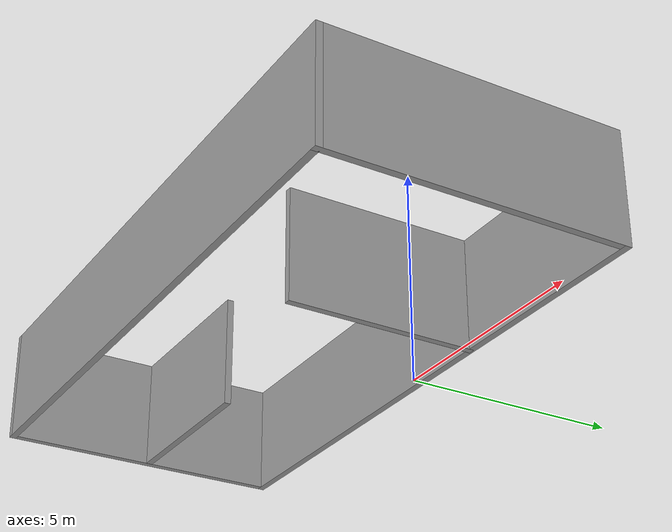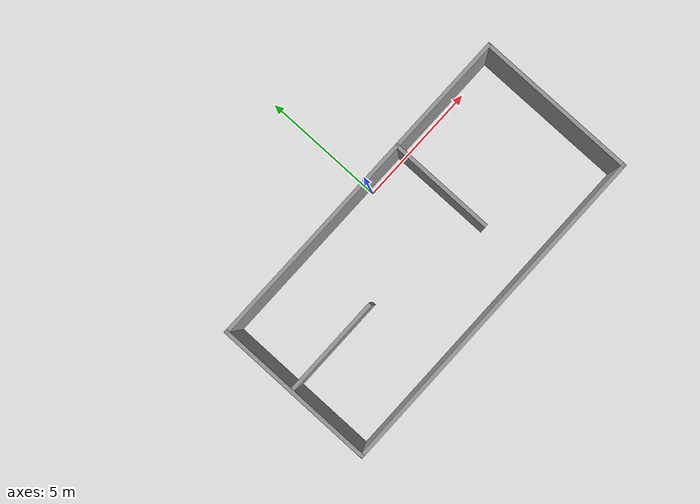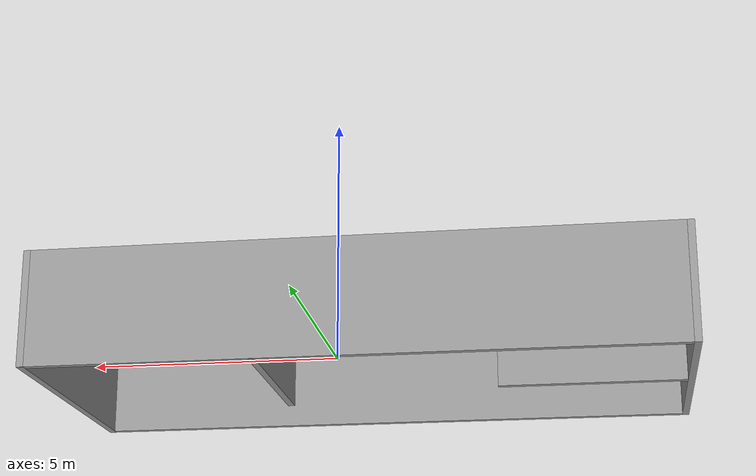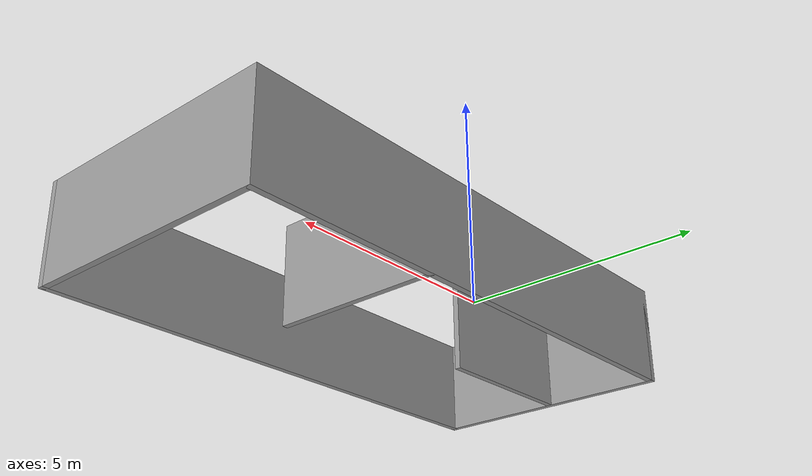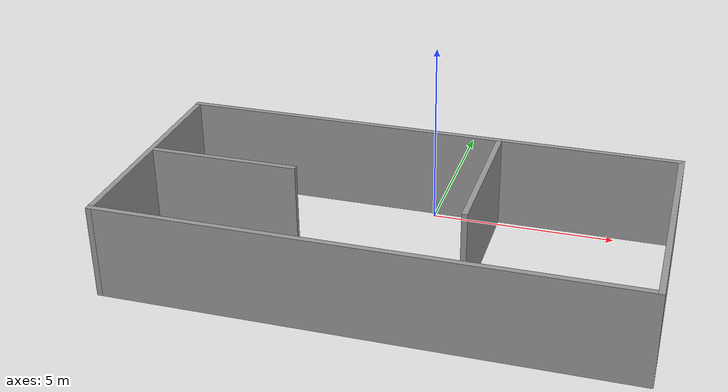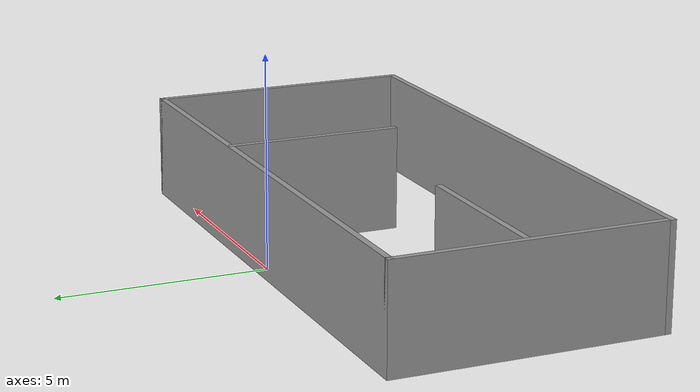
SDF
<?xml version='1.0'?>
<sdf version='1.6'>
  <model name='simple_building'>
    <pose frame=''>-0.271176 -2.94559 0 0 -0 0</pose>
    <link name='Wall_0'>
      <collision name='Wall_0_Collision'>
        <geometry>
          <box>
            <size>13.75 0.15 2.5</size>
          </box>
        </geometry>
        <pose frame=''>0 0 1.25 0 -0 0</pose>
      </collision>
      <visual name='Wall_0_Visual'>
        <pose frame=''>0 0 1.25 0 -0 0</pose>
        <geometry>
          <box>
            <size>13.75 0.15 2.5</size>
          </box>
        </geometry>
        <material>
          <script>
            <uri>file://media/materials/scripts/gazebo.material</uri>
            <name>Gazebo/Grey</name>
          </script>
          <ambient>1 1 1 1</ambient>
        </material>
        <meta>
          <layer>0</layer>
        </meta>
      </visual>
      <pose frame=''>0 3.175 0 0 -0 0</pose>
    </link>
    <link name='Wall_1'>
      <collision name='Wall_1_Collision'>
        <geometry>
          <box>
            <size>6.5 0.15 2.5</size>
          </box>
        </geometry>
        <pose frame=''>0 0 1.25 0 -0 0</pose>
      </collision>
      <visual name='Wall_1_Visual'>
        <pose frame=''>0 0 1.25 0 -0 0</pose>
        <geometry>
          <box>
            <size>6.5 0.15 2.5</size>
          </box>
        </geometry>
        <material>
          <script>
            <uri>file://media/materials/scripts/gazebo.material</uri>
            <name>Gazebo/Grey</name>
          </script>
          <ambient>1 1 1 1</ambient>
        </material>
        <meta>
          <layer>0</layer>
        </meta>
      </visual>
      <pose frame=''>6.8 0 0 0 0 -1.5708</pose>
    </link>
    <link name='Wall_2'>
      <collision name='Wall_2_Collision'>
        <geometry>
          <box>
            <size>13.75 0.15 2.5</size>
          </box>
        </geometry>
        <pose frame=''>0 0 1.25 0 -0 0</pose>
      </collision>
      <visual name='Wall_2_Visual'>
        <pose frame=''>0 0 1.25 0 -0 0</pose>
        <geometry>
          <box>
            <size>13.75 0.15 2.5</size>
          </box>
        </geometry>
        <material>
          <script>
            <uri>file://media/materials/scripts/gazebo.material</uri>
            <name>Gazebo/Grey</name>
          </script>
          <ambient>1 1 1 1</ambient>
        </material>
        <meta>
          <layer>0</layer>
        </meta>
      </visual>
      <pose frame=''>0 -3.175 0 0 -0 3.14159</pose>
    </link>
    <link name='Wall_3'>
      <collision name='Wall_3_Collision'>
        <geometry>
          <box>
            <size>6.5 0.15 2.5</size>
          </box>
        </geometry>
        <pose frame=''>0 0 1.25 0 -0 0</pose>
      </collision>
      <visual name='Wall_3_Visual'>
        <pose frame=''>0 0 1.25 0 -0 0</pose>
        <geometry>
          <box>
            <size>6.5 0.15 2.5</size>
          </box>
        </geometry>
        <material>
          <script>
            <uri>file://media/materials/scripts/gazebo.material</uri>
            <name>Gazebo/Grey</name>
          </script>
          <ambient>1 1 1 1</ambient>
        </material>
        <meta>
          <layer>0</layer>
        </meta>
      </visual>
      <pose frame=''>-6.8 0 0 0 -0 1.5708</pose>
    </link>
    <link name='Wall_5'>
      <collision name='Wall_5_Collision'>
        <geometry>
          <box>
            <size>4 0.15 2.5</size>
          </box>
        </geometry>
        <pose frame=''>0 0 1.25 0 -0 0</pose>
      </collision>
      <visual name='Wall_5_Visual'>
        <pose frame=''>0 0 1.25 0 -0 0</pose>
        <geometry>
          <box>
            <size>4 0.15 2.5</size>
          </box>
        </geometry>
        <material>
          <script>
            <uri>file://media/materials/scripts/gazebo.material</uri>
            <name>Gazebo/Grey</name>
          </script>
          <ambient>1 1 1 1</ambient>
        </material>
        <meta>
          <layer>0</layer>
        </meta>
      </visual>
      <pose frame=''>-4.73421 0.137851 0 0 -0 0</pose>
    </link>
    <link name='Wall_7'>
      <collision name='Wall_7_Collision'>
        <geometry>
          <box>
            <size>4.25 0.15 2.5</size>
          </box>
        </geometry>
        <pose frame=''>0 0 1.25 0 -0 0</pose>
      </collision>
      <visual name='Wall_7_Visual'>
        <pose frame=''>0 0 1.25 0 -0 0</pose>
        <geometry>
          <box>
            <size>4.25 0.15 2.5</size>
          </box>
        </geometry>
        <material>
          <script>
            <uri>file://media/materials/scripts/gazebo.material</uri>
            <name>Gazebo/Grey</name>
          </script>
          <ambient>1 1 1 1</ambient>
        </material>
        <meta>
          <layer>0</layer>
        </meta>
      </visual>
      <pose frame=''>1.98963 1.08477 0 0 0 -1.5708</pose>
    </link>
    <static>1</static>
  </model>
</sdf>
